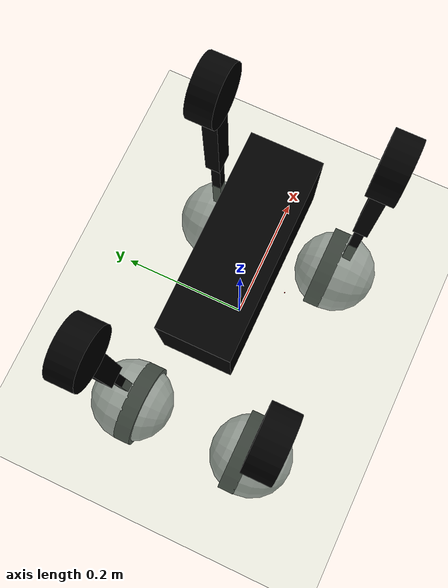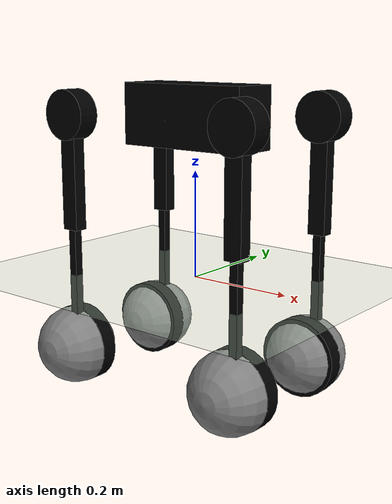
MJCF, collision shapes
<mujoco model="wheeled_go1">
  <compiler angle="radian" meshdir="../meshes"/>
  <size njmax="500" nconmax="100" />
  <option gravity='0 0 -9.806' iterations='50' solver='Newton' timestep='0.001'/>
  <statistic meansize="0.171813" extent="0.800099" center="-0.00357368 0.00177765 -0.13567"/>
  <default>
    <geom contype="1" conaffinity="1" friction="0.6 0.3 0.3" rgba="0.5 0.6 0.7 1" margin="0.001" group="0"/>

    <light castshadow="false" diffuse="1 1 1"/>
    <motor ctrlrange="-33.5 33.5" ctrllimited="true"/>
    <camera fovy="60"/>
    <joint damping="0.01" armature="0.01" frictionloss="0.2" />
  </default>

  <asset>
    <mesh name="trunk" file="trunk.stl"/>
    <mesh name="hip" file="hip.stl"/>
    <mesh name="thigh_mirror" file="thigh_mirror.stl"/>
    <mesh name="calf" file="calf.stl"/>
    <mesh name="wheel_link" file="wheel_link.stl"/>
    <mesh name="wheel" file="wheel.stl"/>
    <mesh name="thigh" file="thigh.stl"/>
  </asset>
  <asset>
    <texture type="skybox" builtin="gradient" rgb1="1.0 1.0 1.0" rgb2="1.0 1.0 1.0" width="512" height="512"/>
    <texture name="plane" type="2d" builtin="flat" rgb1="1 1 1" rgb2="1 1 1" width="512" height="512" mark="cross" markrgb="0 0 0"/>
    <material name="plane" reflectance="0.0" texture="plane" texrepeat="3 3" texuniform="true"/>

    <texture builtin="gradient" height="100" rgb1="1 1 1" rgb2="0 0 0" type="skybox" width="1000"/>
    <texture builtin="flat" height="1278" mark="cross" markrgb="1 1 1" name="texgeom" random="0.01" rgb1="0.8 0.6 0.4" rgb2="0.8 0.6 0.4" type="cube" width="127"/>
    <texture builtin="checker" height="100" name="texplane" rgb1="0.1 0.2 0.3" rgb2="0.5 0.6 0.7" type="2d" width="100"/>
    <material name="MatPlane" reflectance="0.5" shininess="1" specular="1" texrepeat="60 60" texture="texplane"/>
  </asset>

  <visual>
    <rgba haze="0.6 0.8 0.9 1" force="1 0 0 0.5" com="0 0 1 1"/>
    <scale forcewidth="0.075" contactwidth="0.2" contactheight="0.1" connect="0.1" com="0.2" jointlength="0.25" jointwidth="0.05"
           actuatorlength="0.5" actuatorwidth="0.3" framelength="1" framewidth="0.03"/>
    <global fovy="45" linewidth="2" glow="0.3"/>
    <quality shadowsize="4096" numslices="48"/>
    <map stiffness="50" stiffnessrot="100"/>
  </visual>

  <worldbody>
    <light directional="true" diffuse=".8 .8 .8" pos="0 0 10" dir="0 0 -10"/>
    <camera name="track" mode="trackcom" pos="0 -1.3 1.6" xyaxes="1 0 0 0 0.707 0.707"/>
    <geom name='floor' type='plane' conaffinity='1' condim='3' contype='1' rgba="0.8 0.9 0.8 1" material='MatPlane' pos='0 0 0' size='40 40 40'/>

    <body name="trunk" pos="0 0 0.30">
        <inertial pos="0.0116053 0.00442221 0.000106692" quat="0.0111438 0.707126 -0.00935374 0.706938" mass="4.801" diaginertia="0.0447997 0.0366257 0.0162187" />
        <joint type="free" />
        <geom type="mesh" contype="0" conaffinity="0" group="1" rgba="0.913725 0.913725 0.847059 1" mesh="trunk" />
        <geom size="0.13 0.04675 0.057" type="box" rgba="0 0 0 0" />
        <geom size="0.0005 0.0005 0.0005" pos="-0.01592 -0.06659 -0.00617" type="box" contype="0" conaffinity="0" group="1" rgba="0.8 0 0 0" />
        <geom size="0.0005 0.0005 0.0005" pos="-0.01592 -0.06659 -0.00617" type="box" rgba="0.8 0 0 0" />
        <site name="imu" pos="0 0 0"/>

        <body name="FR_hip" pos="0.1881 -0.04675 0">
            <inertial pos="-0.005657 0.008752 -0.000102" quat="0.50601 0.51272 0.497198 0.483596" mass="0.591" diaginertia="0.000619523 0.000400592 0.000333571"/>
            <joint name="FR_hip_joint" pos="0 0 0" axis="1 0 0" range="-0.863 0.863"/>
            <geom quat="0 1 0 0" type="mesh" contype="0" conaffinity="0" group="1" density="0" rgba="0.913725 0.913725 0.847059 1" mesh="hip"/>
            <geom size="0.046 0.02" pos="0 -0.08 0" quat="0.707107 0.707107 0 0" type="cylinder" rgba="0 0 0 0"/>
            <body name="FR_thigh" pos="0 -0.08 0">
                <inertial pos="-0.003342 0.018054 -0.033451" quat="0.638086 -0.0246609 0.075943 0.765814" mass="0.92" diaginertia="0.0045757 0.00444045 0.000641595"/>
                <joint name="FR_thigh_joint" pos="0 0 0" axis="0 1 0" range="-0.686 4.501"/>
                <geom type="mesh" contype="0" conaffinity="0" group="1" density="0" rgba="0.913725 0.913725 0.847059 1" mesh="thigh_mirror"/>
                <geom size="0.1065 0.01225 0.017" pos="0 0 -0.1065" quat="0.707107 0 0.707107 0" type="box" rgba="0 0 0 0"/>
                <body name="FR_calf" pos="0 0 -0.213">
                    <inertial pos="-0.0100712 -0.00660545 -0.207824" quat="0.692205 0.0213441 0.0518582 0.719519" mass="0.650175" diaginertia="0.00315024 0.0028886 0.000374769"/>
                    <joint name="FR_calf_joint" pos="0 0 0" axis="0 1 0" range="-2.818 -0.888"/>
                    <geom type="mesh" contype="0" conaffinity="0" group="1" density="0" rgba="0.913725 0.913725 0.847059 1" mesh="calf"/>
                    <geom size="0.1065 0.008 0.008" pos="0 0 -0.1065" quat="0.707107 0 0.707107 0" type="box" rgba="0 0 0 0"/>
                    <geom pos="-0.015 -0.03 -0.233" quat="0.00079569 0.0399893 -3.18446e-05 0.9992" type="mesh" contype="0" conaffinity="0" group="1" density="0" rgba="0.913725 0.913725 0.847059 1" mesh="wheel_link"/>
                    <geom size="0.049 0.01375" pos="-0.0149562 -0.00250003 -0.233" quat="-0.0277141 0.0288394 0.706518 0.706563" type="cylinder" rgba="0 0 0 0"/>
                    <body name="FR_wheel" pos="-0.0149387 0.00849995 -0.233" quat="0.156103 -0.155004 0.68991 0.689659">
                        <inertial pos="0 0 0.0142504" quat="0.363025 0.606806 -0.363025 0.606806" mass="0.202347" diaginertia="0.000530092 0.000271419 0.00027137"/>
                        <joint name="FR_wheel_joint" pos="0 0 0" axis="0 0 -1"/>
                        <geom type="mesh" contype="0" conaffinity="0" group="1" density="0" rgba="1 1 1 1" mesh="wheel"/>
                        <geom size="0.075 0.015" pos="0 0 0.016" quat="0.707107 0 0 0.707107" type="cylinder" rgba="0 0 0 0"/>
                        <site name="FR_wheel_site" pos="0 0 0" type="sphere" size="0.075"/>
                    </body>
                </body>
            </body>
        </body>
        <body name="FL_hip" pos="0.1881 0.04675 0">
            <inertial pos="-0.005657 -0.008752 -0.000102" quat="0.483596 0.497198 0.51272 0.50601" mass="0.591" diaginertia="0.000619523 0.000400592 0.000333571"/>
            <joint name="FL_hip_joint" pos="0 0 0" axis="1 0 0" range="-0.863 0.863"/>
            <geom type="mesh" contype="0" conaffinity="0" group="1" density="0" rgba="0.913725 0.913725 0.847059 1" mesh="hip"/>
            <geom size="0.046 0.02" pos="0 0.08 0" quat="0.707107 0.707107 0 0" type="cylinder" rgba="0 0 0 0"/>
            <body name="FL_thigh" pos="0 0.08 0">
                <inertial pos="-0.003342 -0.018054 -0.033451" quat="0.765814 0.075943 -0.0246609 0.638086" mass="0.92" diaginertia="0.0045757 0.00444045 0.000641595"/>
                <joint name="FL_thigh_joint" pos="0 0 0" axis="0 1 0" range="-0.686 4.501"/>
                <geom type="mesh" contype="0" conaffinity="0" group="1" density="0" rgba="0.913725 0.913725 0.847059 1" mesh="thigh"/>
                <geom size="0.1065 0.01225 0.017" pos="0 0 -0.1065" quat="0.707107 0 0.707107 0" type="box" rgba="0 0 0 0"/>
                <body name="FL_calf" pos="0 0 -0.213">
                    <inertial pos="-0.0108982 0.00719311 -0.207759" quat="0.716144 0.0477501 0.0248484 0.695874" mass="0.650175" diaginertia="0.00315035 0.00288349 0.000374668"/>
                    <joint name="FL_calf_joint" pos="0 0 0" axis="0 1 0" range="-2.818 -0.888"/>
                    <geom type="mesh" contype="0" conaffinity="0" group="1" density="0" rgba="0.913725 0.913725 0.847059 1" mesh="calf"/>
                    <geom size="0.1065 0.008 0.008" pos="0 0 -0.1065" quat="0.707107 0 0.707107 0" type="box" rgba="0 0 0 0"/>
                    <geom pos="-0.015 0.03 -0.233" quat="0.924909 0 0.380188 0" type="mesh" contype="0" conaffinity="0" group="1" density="0" rgba="0.913725 0.913725 0.847059 1" mesh="wheel_link"/>
                    <geom size="0.049 0.01375" pos="-0.015 0.0025 -0.233" quat="0.706541 0.706541 0.0282767 -0.0282767" type="cylinder" rgba="0 0 0 0"/>
                    <body name="FL_wheel" pos="-0.015 -0.0085 -0.233" quat="0.675146 0.675149 0.21018 -0.21018">
                        <inertial pos="0 0 0.0142504" quat="0.363025 0.606806 -0.363025 0.606806" mass="0.202347" diaginertia="0.000530092 0.000271419 0.00027137"/>
                        <joint name="FL_wheel_joint" pos="0 0 0" axis="0 0 -1"/>
                        <geom type="mesh" contype="0" conaffinity="0" group="1" density="0" rgba="1 1 1 1" mesh="wheel"/>
                        <geom size="0.075 0.015" pos="0 0 0.016" quat="0.707107 0 0 0.707107" type="cylinder" rgba="0 0 0 0"/>
                        <site name="FL_wheel_site" pos="0 0 0" type="sphere" size="0.075"/>
                    </body>
                </body>
            </body>
        </body>
        <body name="RR_hip" pos="-0.1881 -0.04675 0">
            <inertial pos="0.005657 0.008752 -0.000102" quat="0.497198 0.483596 0.50601 0.51272" mass="0.591" diaginertia="0.000619523 0.000400592 0.000333571"/>
            <joint name="RR_hip_joint" pos="0 0 0" axis="1 0 0" range="-0.863 0.863"/>
            <geom quat="0 0 0 -1" type="mesh" contype="0" conaffinity="0" group="1" density="0" rgba="0.913725 0.913725 0.847059 1" mesh="hip"/>
            <geom size="0.046 0.02" pos="0 -0.08 0" quat="0.707107 0.707107 0 0" type="cylinder" rgba="0 0 0 0"/>
            <body name="RR_thigh" pos="0 -0.08 0">
                <inertial pos="-0.003342 0.018054 -0.033451" quat="0.638086 -0.0246609 0.075943 0.765814" mass="0.92" diaginertia="0.0045757 0.00444045 0.000641595"/>
                <joint name="RR_thigh_joint" pos="0 0 0" axis="0 1 0" range="-0.686 4.501"/>
                <geom type="mesh" contype="0" conaffinity="0" group="1" density="0" rgba="0.913725 0.913725 0.847059 1" mesh="thigh_mirror"/>
                <geom size="0.1065 0.01225 0.017" pos="0 0 -0.1065" quat="0.707107 0 0.707107 0" type="box" rgba="0 0 0 0"/>
                <body name="RR_calf" pos="0 0 -0.213">
                    <inertial pos="-0.0100712 -0.00660545 -0.207824" quat="0.692205 0.0213441 0.0518582 0.719519" mass="0.650175" diaginertia="0.00315024 0.0028886 0.000374769"/>
                    <joint name="RR_calf_joint" pos="0 0 0" axis="0 1 0" range="-2.818 -0.888"/>
                    <geom type="mesh" contype="0" conaffinity="0" group="1" density="0" rgba="0.913725 0.913725 0.847059 1" mesh="calf"/>
                    <geom size="0.1065 0.008 0.008" pos="0 0 -0.1065" quat="0.707107 0 0.707107 0" type="box" rgba=" 0 0 0 0"/>
                    <geom pos="-0.015 -0.03 -0.233" quat="0.00079569 0.0399893 -3.18446e-05 0.9992" type="mesh" contype="0" conaffinity="0" group="1" density="0" rgba="0.913725 0.913725 0.847059 1" mesh="wheel_link"/>
                    <geom size="0.049 0.01375" pos="-0.0149562 -0.00250003 -0.233" quat="-0.0277141 0.0288394 0.706518 0.706563" type="cylinder" rgba="0 0 0 0"/>
                    <body name="RR_wheel" pos="-0.0149387 0.00849995 -0.233" quat="0.156103 -0.155004 0.68991 0.689659">
                        <inertial pos="0 0 0.0142504" quat="0.363025 0.606806 -0.363025 0.606806" mass="0.202347" diaginertia="0.000530092 0.000271419 0.00027137"/>
                        <joint name="RR_wheel_joint" pos="0 0 0" axis="0 0 -1"/>
                        <geom type="mesh" contype="0" conaffinity="0" group="1" density="0" rgba="1 1 1 1" mesh="wheel"/>
                        <geom size="0.075 0.015" pos="0 0 0.016" quat="0.707107 0 0 0.707107" type="cylinder" rgba="0 0 0 0"/>
                        <site name="RR_wheel_site" pos="0 0 0" type="sphere" size="0.075"/>
                    </body>
                </body>
            </body>
        </body>
        <body name="RL_hip" pos="-0.1881 0.04675 0">
            <inertial pos="0.005657 -0.008752 -0.000102" quat="0.51272 0.50601 0.483596 0.497198" mass="0.591" diaginertia="0.000619523 0.000400592 0.000333571"/>
            <joint name="RL_hip_joint" pos="0 0 0" axis="1 0 0" range="-0.863 0.863"/>
            <geom quat="0 0 1 0" type="mesh" contype="0" conaffinity="0" group="1" density="0" rgba="0.913725 0.913725 0.847059 1" mesh="hip"/>
            <geom size="0.046 0.02" pos="0 0.08 0" quat="0.707107 0.707107 0 0" type="cylinder" rgba="0 0 0 0"/>
            <body name="RL_thigh" pos="0 0.08 0">
                <inertial pos="-0.003342 -0.018054 -0.033451" quat="0.765814 0.075943 -0.0246609 0.638086" mass="0.92" diaginertia="0.0045757 0.00444045 0.000641595"/>
                <joint name="RL_thigh_joint" pos="0 0 0" axis="0 1 0" range="-0.686 4.501"/>
                <geom type="mesh" contype="0" conaffinity="0" group="1" density="0" rgba="0.913725 0.913725 0.847059 1" mesh="thigh"/>
                <geom size="0.1065 0.01225 0.017" pos="0 0 -0.1065" quat="0.707107 0 0.707107 0" type="box" rgba="0 0 0 0"/>
                <body name="RL_calf" pos="0 0 -0.213">
                    <inertial pos="-0.0108982 0.00719311 -0.207759" quat="0.716144 0.0477501 0.0248484 0.695874" mass="0.650175" diaginertia="0.00315035 0.00288349 0.000374668"/>
                    <joint name="RL_calf_joint" pos="0 0 0" axis="0 1 0" range="-2.818 -0.888"/>
                    <geom type="mesh" contype="0" conaffinity="0" group="1" density="0" rgba="0.913725 0.913725 0.847059 1" mesh="calf"/>
                    <geom size="0.1065 0.008 0.008" pos="0 0 -0.1065" quat="0.707107 0 0.707107 0" type="box" rgba="0 0 0 0"/>
                    <geom pos="-0.015 0.03 -0.233" quat="0.924909 0 0.380188 0" type="mesh" contype="0" conaffinity="0" group="1" density="0" rgba="0.913725 0.913725 0.847059 1" mesh="wheel_link"/>
                    <geom size="0.049 0.01375" pos="-0.015 0.0025 -0.233" quat="0.706541 0.706541 0.0282767 -0.0282767" type="cylinder" rgba="0 0 0 0"/>

                    <body name="RL_wheel" pos="-0.015 -0.0085 -0.233" quat="0.675146 0.675149 0.21018 -0.21018">
                        <inertial pos="0 0 0.0142504" quat="0.363025 0.606806 -0.363025 0.606806" mass="0.202347" diaginertia="0.000530092 0.000271419 0.00027137"/>
                        <joint name="RL_wheel_joint" pos="0 0 0" axis="0 0 -1"/>
                        <geom type="mesh" contype="0" conaffinity="0" group="1" density="0" rgba="1 1 1 1" mesh="wheel"/>
                        <geom size="0.075 0.015" pos="0 0 0.016" quat="0.707107 0 0 0.707107" type="cylinder" rgba="0 0 0 0"/>
                        <site name="RL_wheel_site" pos="0 0 0" type="sphere" size="0.075"/>
                    </body>
                </body>
            </body>
        </body>
    </body>
  </worldbody>

  <actuator>
        <!--FR-->
        <motor name="FR_hip"       gear="1" joint="FR_hip_joint" ctrllimited="true" ctrlrange="-23.7 23.7"/>
        <motor name="FR_thigh"     gear="1" joint="FR_thigh_joint" ctrllimited="true" ctrlrange="-23.7 23.7"/>
        <motor name="FR_calf"      gear="1" joint="FR_calf_joint" ctrllimited="true" ctrlrange="-35.5 35.5"/>
        <motor name="FR_wheel"     gear="1" joint="FR_wheel_joint" ctrllimited="true" ctrlrange="-6 6"/>
        <!--FL-->
        <motor name="FL_hip"       gear="1" joint="FL_hip_joint" ctrllimited="true" ctrlrange="-23.7 23.7"/>
        <motor name="FL_thigh"     gear="1" joint="FL_thigh_joint" ctrllimited="true" ctrlrange="-23.7 23.7"/>
        <motor name="FL_calf"      gear="1" joint="FL_calf_joint"  ctrllimited="true" ctrlrange="-35.5 35.5"/>
        <motor name="FL_wheel"     gear="1" joint="FL_wheel_joint" ctrllimited="true" ctrlrange="-6 6"/>
        <!--RR-->
        <motor name="RR_hip"       gear="1" joint="RR_hip_joint" ctrllimited="true" ctrlrange="-23.7 23.7"/>
        <motor name="RR_thigh"     gear="1" joint="RR_thigh_joint" ctrllimited="true" ctrlrange="-23.7 23.7"/>
        <motor name="RR_calf"      gear="1" joint="RR_calf_joint" ctrllimited="true" ctrlrange="-35.5 35.5"/>
        <motor name="RR_wheel"     gear="1" joint="RR_wheel_joint" ctrllimited="true" ctrlrange="-6 6"/>
        <!--RL-->
        <motor name="RL_hip"       gear="1" joint="RL_hip_joint" ctrllimited="true" ctrlrange="-23.7 23.7"/>
        <motor name="RL_thigh"     gear="1" joint="RL_thigh_joint" ctrllimited="true" ctrlrange="-23.7 23.7"/>
        <motor name="RL_calf"      gear="1" joint="RL_calf_joint"  ctrllimited="true" ctrlrange="-35.5 35.5"/>
        <motor name="RL_wheel"     gear="1" joint="RL_wheel_joint" ctrllimited="true" ctrlrange="-6 6"/>
  </actuator>

    <sensor>
        <!--FR-->
        <jointpos name="FR_hip_pos"     joint="FR_hip_joint"/>
        <jointpos name="FR_thigh_pos"   joint="FR_thigh_joint"/>
        <jointpos name="FR_calf_pos"    joint="FR_calf_joint"/>
        <!--FL-->
        <jointpos name="FL_hip_pos"     joint="FL_hip_joint"/>
        <jointpos name="FL_thigh_pos"   joint="FL_thigh_joint"/>
        <jointpos name="FL_calf_pos"    joint="FL_calf_joint"/>
        <!--RR-->
        <jointpos name="RR_hip_pos"     joint="RR_hip_joint"/>
        <jointpos name="RR_thigh_pos"   joint="RR_thigh_joint"/>
        <jointpos name="RR_calf_pos"    joint="RR_calf_joint" />
        <!--RL-->
        <jointpos name="RL_hip_pos"     joint="RL_hip_joint"/>
        <jointpos name="RL_thigh_pos"   joint="RL_thigh_joint"/>
        <jointpos name="RL_calf_pos"    joint="RL_calf_joint"/>

        <!--FR-->
        <jointvel name="FR_hip_vel"     joint="FR_hip_joint"/>
        <jointvel name="FR_thigh_vel"   joint="FR_thigh_joint"/>
        <jointvel name="FR_calf_vel"    joint="FR_calf_joint"/>
        <jointvel name="FR_wheel_vel"   joint="FR_wheel_joint"/>
        <!--FL-->
        <jointvel name="FL_hip_vel"     joint="FL_hip_joint"/>
        <jointvel name="FL_thigh_vel"   joint="FL_thigh_joint"/>
        <jointvel name="FL_calf_vel"    joint="FL_calf_joint"/>
        <jointvel name="FL_wheel_vel"   joint="FL_wheel_joint"/>
        <!--RR-->
        <jointvel name="RR_hip_vel"     joint="RR_hip_joint"/>
        <jointvel name="RR_thigh_vel"   joint="RR_thigh_joint"/>
        <jointvel name="RR_calf_vel"    joint="RR_calf_joint" />
        <jointvel name="RR_wheel_vel"   joint="RR_wheel_joint"/>
        <!--RL-->
        <jointvel name="RL_hip_vel"     joint="RL_hip_joint"/>
        <jointvel name="RL_thigh_vel"   joint="RL_thigh_joint"/>
        <jointvel name="RL_calf_vel"    joint="RL_calf_joint"/>
        <jointvel name="RL_wheel_vel"   joint="RL_wheel_joint"/>

        <!--FR-->
        <jointactuatorfrc name="FR_hip_torque"     joint="FR_hip_joint"/>
        <jointactuatorfrc name="FR_thigh_torque"   joint="FR_thigh_joint"/>
        <jointactuatorfrc name="FR_calf_torque"    joint="FR_calf_joint"/>
        <jointactuatorfrc name="FR_wheel_torque"   joint="FR_wheel_joint"/>
        <!--FL-->
        <jointactuatorfrc name="FL_hip_torque"     joint="FL_hip_joint"/>
        <jointactuatorfrc name="FL_thigh_torque"   joint="FL_thigh_joint"/>
        <jointactuatorfrc name="FL_calf_torque"    joint="FL_calf_joint"/>
        <jointactuatorfrc name="FL_wheel_torque"   joint="FL_wheel_joint"/>
        <!--RR-->
        <jointactuatorfrc name="RR_hip_torque"     joint="RR_hip_joint"/>
        <jointactuatorfrc name="RR_thigh_torque"   joint="RR_thigh_joint"/>
        <jointactuatorfrc name="RR_calf_torque"    joint="RR_calf_joint" />
        <jointactuatorfrc name="RR_wheel_torque"   joint="RR_wheel_joint"/>
        <!--RL-->
        <jointactuatorfrc name="RL_hip_torque"     joint="RL_hip_joint"/>
        <jointactuatorfrc name="RL_thigh_torque"   joint="RL_thigh_joint"/>
        <jointactuatorfrc name="RL_calf_torque"    joint="RL_calf_joint"/>
        <jointactuatorfrc name="RL_wheel_torque"   joint="RL_wheel_joint"/>

        <accelerometer name="Body_Acc" site="imu"/>
        <framepos name="Body_Pos" objtype="site" objname="imu"/>
        <framequat name="Body_Quat" objtype="site" objname="imu"/>

        <framelinvel name="Body_Vel" objtype="site" objname="imu"/>
        <gyro name="Body_Gyro" site="imu"/>

        <touch name="FR_contact_force_sensor" site="FR_wheel_site"/>
        <touch name="FL_contact_force_sensor" site="FL_wheel_site"/>
        <touch name="RR_contact_force_sensor" site="RR_wheel_site"/>
        <touch name="RL_contact_force_sensor" site="RL_wheel_site"/>

    </sensor>
</mujoco>
